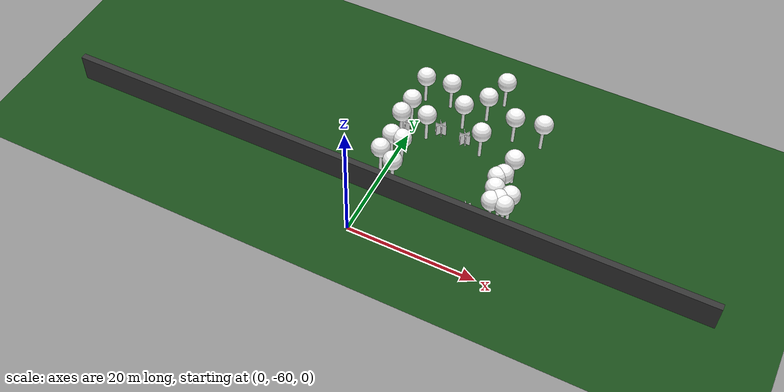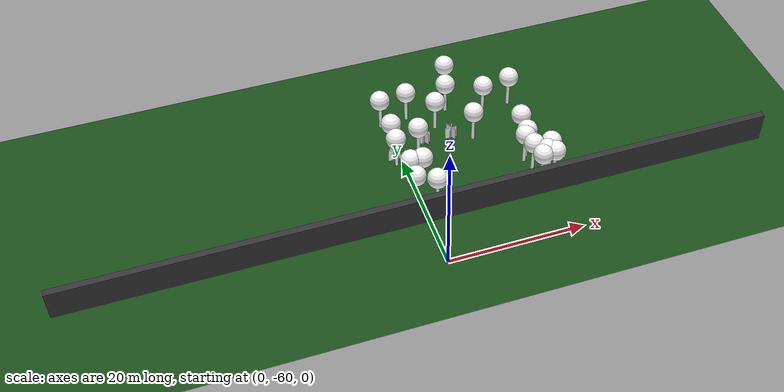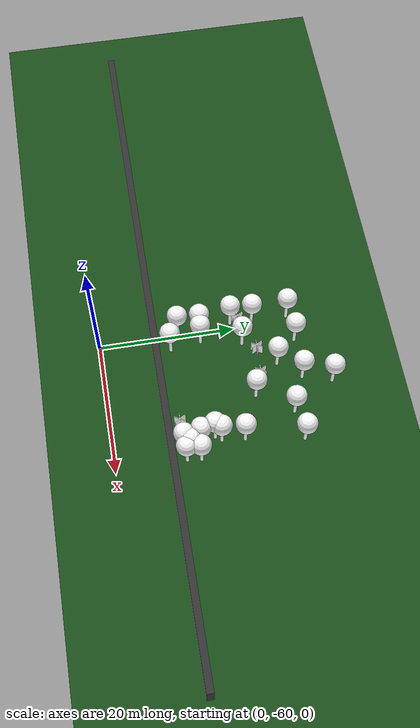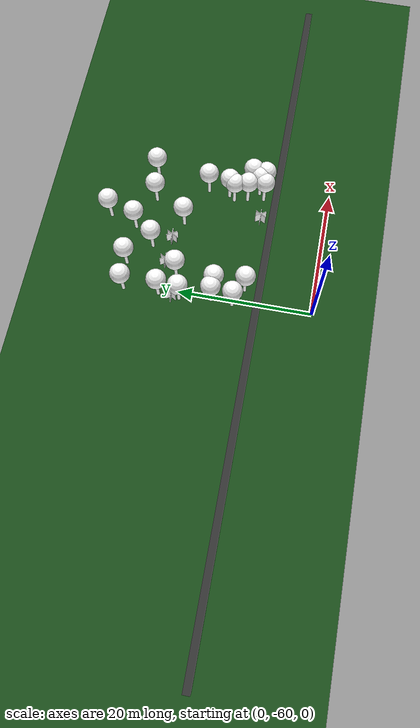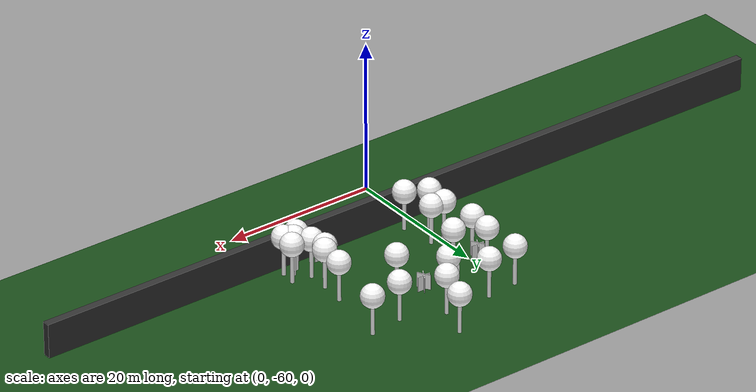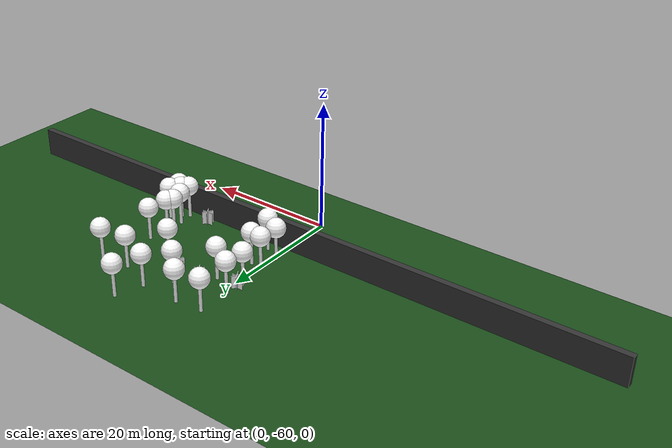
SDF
<sdf version="1.8">
 <world name="forest_world">
  <model name="fire_18">
   <pose>14.14 -50.05 1.00 0 0 0.00</pose>
   <static>true</static>
   <link name="fire_link">
    <visual name="fire_18_fire_main_0">
     <geometry><box><size>1.80 0.10 2.00</size></box></geometry>
     <material>
      <ambient>0.7 0.35 0.0 1</ambient>
      <diffuse>1 1 1 1</diffuse>
      <specular>0 0 0 1</specular>
      <emissive>0 0 0 1</emissive>
      <pbr>
       <metal><albedo_map>textures/fire.png</albedo_map><metalness>0.0</metalness><roughness>0.6</roughness></metal>
      </pbr>
     </material>
     <transparency>0.0</transparency>
     <cast_shadows>false</cast_shadows>
    </visual>
    <visual name="fire_18_fire_60_1">
     <pose>0.00 0.00 0.10 0 0 1.05</pose>
     <geometry><box><size>1.80 0.10 2.00</size></box></geometry>
     <material>
      <ambient>0.7 0.35 0.0 1</ambient>
      <diffuse>1 1 1 1</diffuse>
      <specular>0 0 0 1</specular>
      <emissive>0 0 0 1</emissive>
      <pbr>
       <metal><albedo_map>textures/fire.png</albedo_map><metalness>0.0</metalness><roughness>0.6</roughness></metal>
      </pbr>
     </material>
     <transparency>0.0</transparency>
     <cast_shadows>false</cast_shadows>
    </visual>
    <visual name="fire_18_fire_120_2">
     <pose>0.00 0.00 0.20 0 0 2.09</pose>
     <geometry><box><size>1.80 0.10 2.00</size></box></geometry>
     <material>
      <ambient>0.7 0.35 0.0 1</ambient>
      <diffuse>1 1 1 1</diffuse>
      <specular>0 0 0 1</specular>
      <emissive>0 0 0 1</emissive>
      <pbr>
       <metal><albedo_map>textures/fire.png</albedo_map><metalness>0.0</metalness><roughness>0.6</roughness></metal>
      </pbr>
     </material>
     <transparency>0.0</transparency>
     <cast_shadows>false</cast_shadows>
    </visual>
    <light type="point" name="fire_18_light_0">
     <pose>0.40 0.00 0.50 0 0 0</pose>
     <diffuse>1.0 0.7 0.3 1</diffuse>
     <specular>1.0 0.8 0.3 1</specular>
     <intensity>2</intensity>
     <attenuation>
      <range>2</range>
      <constant>0.1</constant>
      <linear>0.05</linear>
      <quadratic>0.02</quadratic>
     </attenuation>
     <cast_shadows>false</cast_shadows>
    </light>
    <light type="point" name="fire_18_light_1">
     <pose>-0.20 0.35 0.50 0 0 0</pose>
     <diffuse>1.0 0.7 0.3 1</diffuse>
     <specular>1.0 0.8 0.3 1</specular>
     <intensity>2</intensity>
     <attenuation>
      <range>2</range>
      <constant>0.1</constant>
      <linear>0.05</linear>
      <quadratic>0.02</quadratic>
     </attenuation>
     <cast_shadows>false</cast_shadows>
    </light>
    <light type="point" name="fire_18_light_2">
     <pose>-0.20 -0.35 0.50 0 0 0</pose>
     <diffuse>1.0 0.7 0.3 1</diffuse>
     <specular>1.0 0.8 0.3 1</specular>
     <intensity>2</intensity>
     <attenuation>
      <range>2</range>
      <constant>0.1</constant>
      <linear>0.05</linear>
      <quadratic>0.02</quadratic>
     </attenuation>
     <cast_shadows>false</cast_shadows>
    </light>
   </link>
   <plugin filename="libignition-gazebo-pose-publisher-system.so" name="ignition::gazebo::systems::PosePublisher">
    <frame_id>world</frame_id>
    <publish_link_pose>true</publish_link_pose>
    <use_pose_vector_msg>true</use_pose_vector_msg>
    <static_publisher>true</static_publisher>
    <static_update_frequency>1</static_update_frequency>
   </plugin>
  </model>
  <model name="fire_28">
   <pose>8.40 -37.43 1.00 0 0 0.00</pose>
   <static>true</static>
   <link name="fire_link">
    <visual name="fire_28_fire_main_0">
     <geometry><box><size>1.80 0.10 2.00</size></box></geometry>
     <material>
      <ambient>0.7 0.35 0.0 1</ambient>
      <diffuse>1 1 1 1</diffuse>
      <specular>0 0 0 1</specular>
      <emissive>0 0 0 1</emissive>
      <pbr>
       <metal><albedo_map>textures/fire.png</albedo_map><metalness>0.0</metalness><roughness>0.6</roughness></metal>
      </pbr>
     </material>
     <transparency>0.0</transparency>
     <cast_shadows>false</cast_shadows>
    </visual>
    <visual name="fire_28_fire_60_1">
     <pose>0.00 0.00 0.10 0 0 1.05</pose>
     <geometry><box><size>1.80 0.10 2.00</size></box></geometry>
     <material>
      <ambient>0.7 0.35 0.0 1</ambient>
      <diffuse>1 1 1 1</diffuse>
      <specular>0 0 0 1</specular>
      <emissive>0 0 0 1</emissive>
      <pbr>
       <metal><albedo_map>textures/fire.png</albedo_map><metalness>0.0</metalness><roughness>0.6</roughness></metal>
      </pbr>
     </material>
     <transparency>0.0</transparency>
     <cast_shadows>false</cast_shadows>
    </visual>
    <visual name="fire_28_fire_120_2">
     <pose>0.00 0.00 0.20 0 0 2.09</pose>
     <geometry><box><size>1.80 0.10 2.00</size></box></geometry>
     <material>
      <ambient>0.7 0.35 0.0 1</ambient>
      <diffuse>1 1 1 1</diffuse>
      <specular>0 0 0 1</specular>
      <emissive>0 0 0 1</emissive>
      <pbr>
       <metal><albedo_map>textures/fire.png</albedo_map><metalness>0.0</metalness><roughness>0.6</roughness></metal>
      </pbr>
     </material>
     <transparency>0.0</transparency>
     <cast_shadows>false</cast_shadows>
    </visual>
    <light type="point" name="fire_28_light_0">
     <pose>0.40 0.00 0.50 0 0 0</pose>
     <diffuse>1.0 0.7 0.3 1</diffuse>
     <specular>1.0 0.8 0.3 1</specular>
     <intensity>2</intensity>
     <attenuation>
      <range>2</range>
      <constant>0.1</constant>
      <linear>0.05</linear>
      <quadratic>0.02</quadratic>
     </attenuation>
     <cast_shadows>false</cast_shadows>
    </light>
    <light type="point" name="fire_28_light_1">
     <pose>-0.20 0.35 0.50 0 0 0</pose>
     <diffuse>1.0 0.7 0.3 1</diffuse>
     <specular>1.0 0.8 0.3 1</specular>
     <intensity>2</intensity>
     <attenuation>
      <range>2</range>
      <constant>0.1</constant>
      <linear>0.05</linear>
      <quadratic>0.02</quadratic>
     </attenuation>
     <cast_shadows>false</cast_shadows>
    </light>
    <light type="point" name="fire_28_light_2">
     <pose>-0.20 -0.35 0.50 0 0 0</pose>
     <diffuse>1.0 0.7 0.3 1</diffuse>
     <specular>1.0 0.8 0.3 1</specular>
     <intensity>2</intensity>
     <attenuation>
      <range>2</range>
      <constant>0.1</constant>
      <linear>0.05</linear>
      <quadratic>0.02</quadratic>
     </attenuation>
     <cast_shadows>false</cast_shadows>
    </light>
   </link>
   <plugin filename="libignition-gazebo-pose-publisher-system.so" name="ignition::gazebo::systems::PosePublisher">
    <frame_id>world</frame_id>
    <publish_link_pose>true</publish_link_pose>
    <use_pose_vector_msg>true</use_pose_vector_msg>
    <static_publisher>true</static_publisher>
    <static_update_frequency>1</static_update_frequency>
   </plugin>
  </model>
  <model name="fire_30">
   <pose>4.30 -37.25 1.00 0 0 0.00</pose>
   <static>true</static>
   <link name="fire_link">
    <visual name="fire_30_fire_main_0">
     <geometry><box><size>1.80 0.10 2.00</size></box></geometry>
     <material>
      <ambient>0.7 0.35 0.0 1</ambient>
      <diffuse>1 1 1 1</diffuse>
      <specular>0 0 0 1</specular>
      <emissive>0 0 0 1</emissive>
      <pbr>
       <metal><albedo_map>textures/fire.png</albedo_map><metalness>0.0</metalness><roughness>0.6</roughness></metal>
      </pbr>
     </material>
     <transparency>0.0</transparency>
     <cast_shadows>false</cast_shadows>
    </visual>
    <visual name="fire_30_fire_60_1">
     <pose>0.00 0.00 0.10 0 0 1.05</pose>
     <geometry><box><size>1.80 0.10 2.00</size></box></geometry>
     <material>
      <ambient>0.7 0.35 0.0 1</ambient>
      <diffuse>1 1 1 1</diffuse>
      <specular>0 0 0 1</specular>
      <emissive>0 0 0 1</emissive>
      <pbr>
       <metal><albedo_map>textures/fire.png</albedo_map><metalness>0.0</metalness><roughness>0.6</roughness></metal>
      </pbr>
     </material>
     <transparency>0.0</transparency>
     <cast_shadows>false</cast_shadows>
    </visual>
    <visual name="fire_30_fire_120_2">
     <pose>0.00 0.00 0.20 0 0 2.09</pose>
     <geometry><box><size>1.80 0.10 2.00</size></box></geometry>
     <material>
      <ambient>0.7 0.35 0.0 1</ambient>
      <diffuse>1 1 1 1</diffuse>
      <specular>0 0 0 1</specular>
      <emissive>0 0 0 1</emissive>
      <pbr>
       <metal><albedo_map>textures/fire.png</albedo_map><metalness>0.0</metalness><roughness>0.6</roughness></metal>
      </pbr>
     </material>
     <transparency>0.0</transparency>
     <cast_shadows>false</cast_shadows>
    </visual>
    <light type="point" name="fire_30_light_0">
     <pose>0.40 0.00 0.50 0 0 0</pose>
     <diffuse>1.0 0.7 0.3 1</diffuse>
     <specular>1.0 0.8 0.3 1</specular>
     <intensity>2</intensity>
     <attenuation>
      <range>2</range>
      <constant>0.1</constant>
      <linear>0.05</linear>
      <quadratic>0.02</quadratic>
     </attenuation>
     <cast_shadows>false</cast_shadows>
    </light>
    <light type="point" name="fire_30_light_1">
     <pose>-0.20 0.35 0.50 0 0 0</pose>
     <diffuse>1.0 0.7 0.3 1</diffuse>
     <specular>1.0 0.8 0.3 1</specular>
     <intensity>2</intensity>
     <attenuation>
      <range>2</range>
      <constant>0.1</constant>
      <linear>0.05</linear>
      <quadratic>0.02</quadratic>
     </attenuation>
     <cast_shadows>false</cast_shadows>
    </light>
    <light type="point" name="fire_30_light_2">
     <pose>-0.20 -0.35 0.50 0 0 0</pose>
     <diffuse>1.0 0.7 0.3 1</diffuse>
     <specular>1.0 0.8 0.3 1</specular>
     <intensity>2</intensity>
     <attenuation>
      <range>2</range>
      <constant>0.1</constant>
      <linear>0.05</linear>
      <quadratic>0.02</quadratic>
     </attenuation>
     <cast_shadows>false</cast_shadows>
    </light>
   </link>
   <plugin filename="libignition-gazebo-pose-publisher-system.so" name="ignition::gazebo::systems::PosePublisher">
    <frame_id>world</frame_id>
    <publish_link_pose>true</publish_link_pose>
    <use_pose_vector_msg>true</use_pose_vector_msg>
    <static_publisher>true</static_publisher>
    <static_update_frequency>1</static_update_frequency>
   </plugin>
  </model>
  <model name="fire_39">
   <pose>-0.97 -39.21 1.00 0 0 0.00</pose>
   <static>true</static>
   <link name="fire_link">
    <visual name="fire_39_fire_main_0">
     <geometry><box><size>1.80 0.10 2.00</size></box></geometry>
     <material>
      <ambient>0.7 0.35 0.0 1</ambient>
      <diffuse>1 1 1 1</diffuse>
      <specular>0 0 0 1</specular>
      <emissive>0 0 0 1</emissive>
      <pbr>
       <metal><albedo_map>textures/fire.png</albedo_map><metalness>0.0</metalness><roughness>0.6</roughness></metal>
      </pbr>
     </material>
     <transparency>0.0</transparency>
     <cast_shadows>false</cast_shadows>
    </visual>
    <visual name="fire_39_fire_60_1">
     <pose>0.00 0.00 0.10 0 0 1.05</pose>
     <geometry><box><size>1.80 0.10 2.00</size></box></geometry>
     <material>
      <ambient>0.7 0.35 0.0 1</ambient>
      <diffuse>1 1 1 1</diffuse>
      <specular>0 0 0 1</specular>
      <emissive>0 0 0 1</emissive>
      <pbr>
       <metal><albedo_map>textures/fire.png</albedo_map><metalness>0.0</metalness><roughness>0.6</roughness></metal>
      </pbr>
     </material>
     <transparency>0.0</transparency>
     <cast_shadows>false</cast_shadows>
    </visual>
    <visual name="fire_39_fire_120_2">
     <pose>0.00 0.00 0.20 0 0 2.09</pose>
     <geometry><box><size>1.80 0.10 2.00</size></box></geometry>
     <material>
      <ambient>0.7 0.35 0.0 1</ambient>
      <diffuse>1 1 1 1</diffuse>
      <specular>0 0 0 1</specular>
      <emissive>0 0 0 1</emissive>
      <pbr>
       <metal><albedo_map>textures/fire.png</albedo_map><metalness>0.0</metalness><roughness>0.6</roughness></metal>
      </pbr>
     </material>
     <transparency>0.0</transparency>
     <cast_shadows>false</cast_shadows>
    </visual>
    <light type="point" name="fire_39_light_0">
     <pose>0.40 0.00 0.50 0 0 0</pose>
     <diffuse>1.0 0.7 0.3 1</diffuse>
     <specular>1.0 0.8 0.3 1</specular>
     <intensity>2</intensity>
     <attenuation>
      <range>2</range>
      <constant>0.1</constant>
      <linear>0.05</linear>
      <quadratic>0.02</quadratic>
     </attenuation>
     <cast_shadows>false</cast_shadows>
    </light>
    <light type="point" name="fire_39_light_1">
     <pose>-0.20 0.35 0.50 0 0 0</pose>
     <diffuse>1.0 0.7 0.3 1</diffuse>
     <specular>1.0 0.8 0.3 1</specular>
     <intensity>2</intensity>
     <attenuation>
      <range>2</range>
      <constant>0.1</constant>
      <linear>0.05</linear>
      <quadratic>0.02</quadratic>
     </attenuation>
     <cast_shadows>false</cast_shadows>
    </light>
    <light type="point" name="fire_39_light_2">
     <pose>-0.20 -0.35 0.50 0 0 0</pose>
     <diffuse>1.0 0.7 0.3 1</diffuse>
     <specular>1.0 0.8 0.3 1</specular>
     <intensity>2</intensity>
     <attenuation>
      <range>2</range>
      <constant>0.1</constant>
      <linear>0.05</linear>
      <quadratic>0.02</quadratic>
     </attenuation>
     <cast_shadows>false</cast_shadows>
    </light>
   </link>
   <plugin filename="libignition-gazebo-pose-publisher-system.so" name="ignition::gazebo::systems::PosePublisher">
    <frame_id>world</frame_id>
    <publish_link_pose>true</publish_link_pose>
    <use_pose_vector_msg>true</use_pose_vector_msg>
    <static_publisher>true</static_publisher>
    <static_update_frequency>1</static_update_frequency>
   </plugin>
  </model>
  <model name="tree_simple484">
   <static>1</static>
   <link name="link">
    <pose>0 0 0.1 0 -0 0</pose>
    <collision name="collision_trunk">
     <pose>0 0 2 0 -0 0</pose>
     <geometry><cylinder><radius>0.25</radius><length>4</length></cylinder></geometry>
    </collision>
    <collision name="collision_treetop">
     <pose>0 0 5.2 0 -0 0</pose>
     <geometry><sphere><radius>1.5</radius></sphere></geometry>
    </collision>
    <visual name="trunk">
     <pose>0 0 2 0 -0 0</pose>
     <geometry><cylinder><radius>0.25</radius><length>4</length></cylinder></geometry>
     <material>
      <ambient>0.5 0.5 0.5 1</ambient>
      <diffuse>1.0 1.0 1.0 1</diffuse>
      <specular>0.0 0.0 0.0 1</specular>
      <pbr>
       <metal>
        <albedo_map>../worlds/textures/tree_simple_trunk.jpg</albedo_map>
        <metalness>0.0</metalness>
        <roughness>0.8</roughness>
       </metal>
      </pbr>
     </material>
    </visual>
    <visual name="treetop">
     <pose>0 0 5.2 0 -0 0</pose>
     <geometry><sphere><radius>1.5</radius></sphere></geometry>
     <material>
      <ambient>0.5 0.5 0.5 1</ambient>
      <diffuse>1.0 1.0 1.0 1</diffuse>
      <specular>0.0 0.0 0.0 1</specular>
      <pbr>
       <metal>
        <albedo_map>../worlds/textures/tree_simple_treetop.jpg</albedo_map>
        <metalness>0.0</metalness>
        <roughness>0.9</roughness>
       </metal>
      </pbr>
     </material>
    </visual>
   </link>
   <pose>19.8605088225 -47.9062304077 0 0 -0 0</pose>
  </model>
  <model name="tree_simple464">
   <static>1</static>
   <link name="link">
    <pose>0 0 0.1 0 -0 0</pose>
    <collision name="collision_trunk">
     <pose>0 0 2 0 -0 0</pose>
     <geometry><cylinder><radius>0.25</radius><length>4</length></cylinder></geometry>
    </collision>
    <collision name="collision_treetop">
     <pose>0 0 5.2 0 -0 0</pose>
     <geometry><sphere><radius>1.5</radius></sphere></geometry>
    </collision>
    <visual name="trunk">
     <pose>0 0 2 0 -0 0</pose>
     <geometry><cylinder><radius>0.25</radius><length>4</length></cylinder></geometry>
     <material>
      <ambient>0.5 0.5 0.5 1</ambient>
      <diffuse>1.0 1.0 1.0 1</diffuse>
      <specular>0.0 0.0 0.0 1</specular>
      <pbr>
       <metal>
        <albedo_map>../worlds/textures/tree_simple_trunk.jpg</albedo_map>
        <metalness>0.0</metalness>
        <roughness>0.8</roughness>
       </metal>
      </pbr>
     </material>
    </visual>
    <visual name="treetop">
     <pose>0 0 5.2 0 -0 0</pose>
     <geometry><sphere><radius>1.5</radius></sphere></geometry>
     <material>
      <ambient>0.5 0.5 0.5 1</ambient>
      <diffuse>1.0 1.0 1.0 1</diffuse>
      <specular>0.0 0.0 0.0 1</specular>
      <pbr>
       <metal>
        <albedo_map>../worlds/textures/tree_simple_treetop.jpg</albedo_map>
        <metalness>0.0</metalness>
        <roughness>0.9</roughness>
       </metal>
      </pbr>
     </material>
    </visual>
   </link>
   <pose>18.697132214 -49.1923863075 0 0 -0 0</pose>
  </model>
  <model name="tree_simple458">
   <static>1</static>
   <link name="link">
    <pose>0 0 0.1 0 -0 0</pose>
    <collision name="collision_trunk">
     <pose>0 0 2 0 -0 0</pose>
     <geometry><cylinder><radius>0.25</radius><length>4</length></cylinder></geometry>
    </collision>
    <collision name="collision_treetop">
     <pose>0 0 5.2 0 -0 0</pose>
     <geometry><sphere><radius>1.5</radius></sphere></geometry>
    </collision>
    <visual name="trunk">
     <pose>0 0 2 0 -0 0</pose>
     <geometry><cylinder><radius>0.25</radius><length>4</length></cylinder></geometry>
     <material>
      <ambient>0.5 0.5 0.5 1</ambient>
      <diffuse>1.0 1.0 1.0 1</diffuse>
      <specular>0.0 0.0 0.0 1</specular>
      <pbr>
       <metal>
        <albedo_map>../worlds/textures/tree_simple_trunk.jpg</albedo_map>
        <metalness>0.0</metalness>
        <roughness>0.8</roughness>
       </metal>
      </pbr>
     </material>
    </visual>
    <visual name="treetop">
     <pose>0 0 5.2 0 -0 0</pose>
     <geometry><sphere><radius>1.5</radius></sphere></geometry>
     <material>
      <ambient>0.5 0.5 0.5 1</ambient>
      <diffuse>1.0 1.0 1.0 1</diffuse>
      <specular>0.0 0.0 0.0 1</specular>
      <pbr>
       <metal>
        <albedo_map>../worlds/textures/tree_simple_treetop.jpg</albedo_map>
        <metalness>0.0</metalness>
        <roughness>0.9</roughness>
       </metal>
      </pbr>
     </material>
    </visual>
   </link>
   <pose>2.06613671761 -49.6676263837 0 0 -0 0</pose>
  </model>
  <model name="tree_simple430">
   <static>1</static>
   <link name="link">
    <pose>0 0 0.1 0 -0 0</pose>
    <collision name="collision_trunk">
     <pose>0 0 2 0 -0 0</pose>
     <geometry><cylinder><radius>0.25</radius><length>4</length></cylinder></geometry>
    </collision>
    <collision name="collision_treetop">
     <pose>0 0 5.2 0 -0 0</pose>
     <geometry><sphere><radius>1.5</radius></sphere></geometry>
    </collision>
    <visual name="trunk">
     <pose>0 0 2 0 -0 0</pose>
     <geometry><cylinder><radius>0.25</radius><length>4</length></cylinder></geometry>
     <material>
      <ambient>0.5 0.5 0.5 1</ambient>
      <diffuse>1.0 1.0 1.0 1</diffuse>
      <specular>0.0 0.0 0.0 1</specular>
      <pbr>
       <metal>
        <albedo_map>../worlds/textures/tree_simple_trunk.jpg</albedo_map>
        <metalness>0.0</metalness>
        <roughness>0.8</roughness>
       </metal>
      </pbr>
     </material>
    </visual>
    <visual name="treetop">
     <pose>0 0 5.2 0 -0 0</pose>
     <geometry><sphere><radius>1.5</radius></sphere></geometry>
     <material>
      <ambient>0.5 0.5 0.5 1</ambient>
      <diffuse>1.0 1.0 1.0 1</diffuse>
      <specular>0.0 0.0 0.0 1</specular>
      <pbr>
       <metal>
        <albedo_map>../worlds/textures/tree_simple_treetop.jpg</albedo_map>
        <metalness>0.0</metalness>
        <roughness>0.9</roughness>
       </metal>
      </pbr>
     </material>
    </visual>
   </link>
   <pose>19.6675265043 -49.8829362896 0 0 -0 0</pose>
  </model>
  <model name="tree_simple427">
   <static>1</static>
   <link name="link">
    <pose>0 0 0.1 0 -0 0</pose>
    <collision name="collision_trunk">
     <pose>0 0 2 0 -0 0</pose>
     <geometry><cylinder><radius>0.25</radius><length>4</length></cylinder></geometry>
    </collision>
    <collision name="collision_treetop">
     <pose>0 0 5.2 0 -0 0</pose>
     <geometry><sphere><radius>1.5</radius></sphere></geometry>
    </collision>
    <visual name="trunk">
     <pose>0 0 2 0 -0 0</pose>
     <geometry><cylinder><radius>0.25</radius><length>4</length></cylinder></geometry>
     <material>
      <ambient>0.5 0.5 0.5 1</ambient>
      <diffuse>1.0 1.0 1.0 1</diffuse>
      <specular>0.0 0.0 0.0 1</specular>
      <pbr>
       <metal>
        <albedo_map>../worlds/textures/tree_simple_trunk.jpg</albedo_map>
        <metalness>0.0</metalness>
        <roughness>0.8</roughness>
       </metal>
      </pbr>
     </material>
    </visual>
    <visual name="treetop">
     <pose>0 0 5.2 0 -0 0</pose>
     <geometry><sphere><radius>1.5</radius></sphere></geometry>
     <material>
      <ambient>0.5 0.5 0.5 1</ambient>
      <diffuse>1.0 1.0 1.0 1</diffuse>
      <specular>0.0 0.0 0.0 1</specular>
      <pbr>
       <metal>
        <albedo_map>../worlds/textures/tree_simple_treetop.jpg</albedo_map>
        <metalness>0.0</metalness>
        <roughness>0.9</roughness>
       </metal>
      </pbr>
     </material>
    </visual>
   </link>
   <pose>17.8220319496 -41.3749782968 0 0 -0 0</pose>
  </model>
  <model name="tree_simple377">
   <static>1</static>
   <link name="link">
    <pose>0 0 0.1 0 -0 0</pose>
    <collision name="collision_trunk">
     <pose>0 0 2 0 -0 0</pose>
     <geometry><cylinder><radius>0.25</radius><length>4</length></cylinder></geometry>
    </collision>
    <collision name="collision_treetop">
     <pose>0 0 5.2 0 -0 0</pose>
     <geometry><sphere><radius>1.5</radius></sphere></geometry>
    </collision>
    <visual name="trunk">
     <pose>0 0 2 0 -0 0</pose>
     <geometry><cylinder><radius>0.25</radius><length>4</length></cylinder></geometry>
     <material>
      <ambient>0.5 0.5 0.5 1</ambient>
      <diffuse>1.0 1.0 1.0 1</diffuse>
      <specular>0.0 0.0 0.0 1</specular>
      <pbr>
       <metal>
        <albedo_map>../worlds/textures/tree_simple_trunk.jpg</albedo_map>
        <metalness>0.0</metalness>
        <roughness>0.8</roughness>
       </metal>
      </pbr>
     </material>
    </visual>
    <visual name="treetop">
     <pose>0 0 5.2 0 -0 0</pose>
     <geometry><sphere><radius>1.5</radius></sphere></geometry>
     <material>
      <ambient>0.5 0.5 0.5 1</ambient>
      <diffuse>1.0 1.0 1.0 1</diffuse>
      <specular>0.0 0.0 0.0 1</specular>
      <pbr>
       <metal>
        <albedo_map>../worlds/textures/tree_simple_treetop.jpg</albedo_map>
        <metalness>0.0</metalness>
        <roughness>0.9</roughness>
       </metal>
      </pbr>
     </material>
    </visual>
   </link>
   <pose>10.8205708978 -27.3699142702 0 0 -0 0</pose>
  </model>
  <model name="tree_simple344">
   <static>1</static>
   <link name="link">
    <pose>0 0 0.1 0 -0 0</pose>
    <collision name="collision_trunk">
     <pose>0 0 2 0 -0 0</pose>
     <geometry><cylinder><radius>0.25</radius><length>4</length></cylinder></geometry>
    </collision>
    <collision name="collision_treetop">
     <pose>0 0 5.2 0 -0 0</pose>
     <geometry><sphere><radius>1.5</radius></sphere></geometry>
    </collision>
    <visual name="trunk">
     <pose>0 0 2 0 -0 0</pose>
     <geometry><cylinder><radius>0.25</radius><length>4</length></cylinder></geometry>
     <material>
      <ambient>0.5 0.5 0.5 1</ambient>
      <diffuse>1.0 1.0 1.0 1</diffuse>
      <specular>0.0 0.0 0.0 1</specular>
      <pbr>
       <metal>
        <albedo_map>../worlds/textures/tree_simple_trunk.jpg</albedo_map>
        <metalness>0.0</metalness>
        <roughness>0.8</roughness>
       </metal>
      </pbr>
     </material>
    </visual>
    <visual name="treetop">
     <pose>0 0 5.2 0 -0 0</pose>
     <geometry><sphere><radius>1.5</radius></sphere></geometry>
     <material>
      <ambient>0.5 0.5 0.5 1</ambient>
      <diffuse>1.0 1.0 1.0 1</diffuse>
      <specular>0.0 0.0 0.0 1</specular>
      <pbr>
       <metal>
        <albedo_map>../worlds/textures/tree_simple_treetop.jpg</albedo_map>
        <metalness>0.0</metalness>
        <roughness>0.9</roughness>
       </metal>
      </pbr>
     </material>
    </visual>
   </link>
   <pose>-1.01406181855 -40.356708741 0 0 -0 0</pose>
  </model>
  <model name="tree_simple285">
   <static>1</static>
   <link name="link">
    <pose>0 0 0.1 0 -0 0</pose>
    <collision name="collision_trunk">
     <pose>0 0 2 0 -0 0</pose>
     <geometry><cylinder><radius>0.25</radius><length>4</length></cylinder></geometry>
    </collision>
    <collision name="collision_treetop">
     <pose>0 0 5.2 0 -0 0</pose>
     <geometry><sphere><radius>1.5</radius></sphere></geometry>
    </collision>
    <visual name="trunk">
     <pose>0 0 2 0 -0 0</pose>
     <geometry><cylinder><radius>0.25</radius><length>4</length></cylinder></geometry>
     <material>
      <ambient>0.5 0.5 0.5 1</ambient>
      <diffuse>1.0 1.0 1.0 1</diffuse>
      <specular>0.0 0.0 0.0 1</specular>
      <pbr>
       <metal>
        <albedo_map>../worlds/textures/tree_simple_trunk.jpg</albedo_map>
        <metalness>0.0</metalness>
        <roughness>0.8</roughness>
       </metal>
      </pbr>
     </material>
    </visual>
    <visual name="treetop">
     <pose>0 0 5.2 0 -0 0</pose>
     <geometry><sphere><radius>1.5</radius></sphere></geometry>
     <material>
      <ambient>0.5 0.5 0.5 1</ambient>
      <diffuse>1.0 1.0 1.0 1</diffuse>
      <specular>0.0 0.0 0.0 1</specular>
      <pbr>
       <metal>
        <albedo_map>../worlds/textures/tree_simple_treetop.jpg</albedo_map>
        <metalness>0.0</metalness>
        <roughness>0.9</roughness>
       </metal>
      </pbr>
     </material>
    </visual>
   </link>
   <pose>-0.758587547347 -37.1758267931 0 0 -0 0</pose>
  </model>
  <model name="tree_simple281">
   <static>1</static>
   <link name="link">
    <pose>0 0 0.1 0 -0 0</pose>
    <collision name="collision_trunk">
     <pose>0 0 2 0 -0 0</pose>
     <geometry><cylinder><radius>0.25</radius><length>4</length></cylinder></geometry>
    </collision>
    <collision name="collision_treetop">
     <pose>0 0 5.2 0 -0 0</pose>
     <geometry><sphere><radius>1.5</radius></sphere></geometry>
    </collision>
    <visual name="trunk">
     <pose>0 0 2 0 -0 0</pose>
     <geometry><cylinder><radius>0.25</radius><length>4</length></cylinder></geometry>
     <material>
      <ambient>0.5 0.5 0.5 1</ambient>
      <diffuse>1.0 1.0 1.0 1</diffuse>
      <specular>0.0 0.0 0.0 1</specular>
      <pbr>
       <metal>
        <albedo_map>../worlds/textures/tree_simple_trunk.jpg</albedo_map>
        <metalness>0.0</metalness>
        <roughness>0.8</roughness>
       </metal>
      </pbr>
     </material>
    </visual>
    <visual name="treetop">
     <pose>0 0 5.2 0 -0 0</pose>
     <geometry><sphere><radius>1.5</radius></sphere></geometry>
     <material>
      <ambient>0.5 0.5 0.5 1</ambient>
      <diffuse>1.0 1.0 1.0 1</diffuse>
      <specular>0.0 0.0 0.0 1</specular>
      <pbr>
       <metal>
        <albedo_map>../worlds/textures/tree_simple_treetop.jpg</albedo_map>
        <metalness>0.0</metalness>
        <roughness>0.9</roughness>
       </metal>
      </pbr>
     </material>
    </visual>
   </link>
   <pose>17.7631793605 -49.9798329039 0 0 -0 0</pose>
  </model>
  <model name="tree_simple249">
   <static>1</static>
   <link name="link">
    <pose>0 0 0.1 0 -0 0</pose>
    <collision name="collision_trunk">
     <pose>0 0 2 0 -0 0</pose>
     <geometry><cylinder><radius>0.25</radius><length>4</length></cylinder></geometry>
    </collision>
    <collision name="collision_treetop">
     <pose>0 0 5.2 0 -0 0</pose>
     <geometry><sphere><radius>1.5</radius></sphere></geometry>
    </collision>
    <visual name="trunk">
     <pose>0 0 2 0 -0 0</pose>
     <geometry><cylinder><radius>0.25</radius><length>4</length></cylinder></geometry>
     <material>
      <ambient>0.5 0.5 0.5 1</ambient>
      <diffuse>1.0 1.0 1.0 1</diffuse>
      <specular>0.0 0.0 0.0 1</specular>
      <pbr>
       <metal>
        <albedo_map>../worlds/textures/tree_simple_trunk.jpg</albedo_map>
        <metalness>0.0</metalness>
        <roughness>0.8</roughness>
       </metal>
      </pbr>
     </material>
    </visual>
    <visual name="treetop">
     <pose>0 0 5.2 0 -0 0</pose>
     <geometry><sphere><radius>1.5</radius></sphere></geometry>
     <material>
      <ambient>0.5 0.5 0.5 1</ambient>
      <diffuse>1.0 1.0 1.0 1</diffuse>
      <specular>0.0 0.0 0.0 1</specular>
      <pbr>
       <metal>
        <albedo_map>../worlds/textures/tree_simple_treetop.jpg</albedo_map>
        <metalness>0.0</metalness>
        <roughness>0.9</roughness>
       </metal>
      </pbr>
     </material>
    </visual>
   </link>
   <pose>9.52111231685 -31.538100668 0 0 -0 0</pose>
  </model>
  <model name="tree_simple223">
   <static>1</static>
   <link name="link">
    <pose>0 0 0.1 0 -0 0</pose>
    <collision name="collision_trunk">
     <pose>0 0 2 0 -0 0</pose>
     <geometry><cylinder><radius>0.25</radius><length>4</length></cylinder></geometry>
    </collision>
    <collision name="collision_treetop">
     <pose>0 0 5.2 0 -0 0</pose>
     <geometry><sphere><radius>1.5</radius></sphere></geometry>
    </collision>
    <visual name="trunk">
     <pose>0 0 2 0 -0 0</pose>
     <geometry><cylinder><radius>0.25</radius><length>4</length></cylinder></geometry>
     <material>
      <ambient>0.5 0.5 0.5 1</ambient>
      <diffuse>1.0 1.0 1.0 1</diffuse>
      <specular>0.0 0.0 0.0 1</specular>
      <pbr>
       <metal>
        <albedo_map>../worlds/textures/tree_simple_trunk.jpg</albedo_map>
        <metalness>0.0</metalness>
        <roughness>0.8</roughness>
       </metal>
      </pbr>
     </material>
    </visual>
    <visual name="treetop">
     <pose>0 0 5.2 0 -0 0</pose>
     <geometry><sphere><radius>1.5</radius></sphere></geometry>
     <material>
      <ambient>0.5 0.5 0.5 1</ambient>
      <diffuse>1.0 1.0 1.0 1</diffuse>
      <specular>0.0 0.0 0.0 1</specular>
      <pbr>
       <metal>
        <albedo_map>../worlds/textures/tree_simple_treetop.jpg</albedo_map>
        <metalness>0.0</metalness>
        <roughness>0.9</roughness>
       </metal>
      </pbr>
     </material>
    </visual>
   </link>
   <pose>-0.831429515675 -31.9083877979 0 0 -0 0</pose>
  </model>
  <model name="tree_simple215">
   <static>1</static>
   <link name="link">
    <pose>0 0 0.1 0 -0 0</pose>
    <collision name="collision_trunk">
     <pose>0 0 2 0 -0 0</pose>
     <geometry><cylinder><radius>0.25</radius><length>4</length></cylinder></geometry>
    </collision>
    <collision name="collision_treetop">
     <pose>0 0 5.2 0 -0 0</pose>
     <geometry><sphere><radius>1.5</radius></sphere></geometry>
    </collision>
    <visual name="trunk">
     <pose>0 0 2 0 -0 0</pose>
     <geometry><cylinder><radius>0.25</radius><length>4</length></cylinder></geometry>
     <material>
      <ambient>0.5 0.5 0.5 1</ambient>
      <diffuse>1.0 1.0 1.0 1</diffuse>
      <specular>0.0 0.0 0.0 1</specular>
      <pbr>
       <metal>
        <albedo_map>../worlds/textures/tree_simple_trunk.jpg</albedo_map>
        <metalness>0.0</metalness>
        <roughness>0.8</roughness>
       </metal>
      </pbr>
     </material>
    </visual>
    <visual name="treetop">
     <pose>0 0 5.2 0 -0 0</pose>
     <geometry><sphere><radius>1.5</radius></sphere></geometry>
     <material>
      <ambient>0.5 0.5 0.5 1</ambient>
      <diffuse>1.0 1.0 1.0 1</diffuse>
      <specular>0.0 0.0 0.0 1</specular>
      <pbr>
       <metal>
        <albedo_map>../worlds/textures/tree_simple_treetop.jpg</albedo_map>
        <metalness>0.0</metalness>
        <roughness>0.9</roughness>
       </metal>
      </pbr>
     </material>
    </visual>
   </link>
   <pose>6.8108440726 -34.7298391892 0 0 -0 0</pose>
  </model>
  <model name="tree_simple167">
   <static>1</static>
   <link name="link">
    <pose>0 0 0.1 0 -0 0</pose>
    <collision name="collision_trunk">
     <pose>0 0 2 0 -0 0</pose>
     <geometry><cylinder><radius>0.25</radius><length>4</length></cylinder></geometry>
    </collision>
    <collision name="collision_treetop">
     <pose>0 0 5.2 0 -0 0</pose>
     <geometry><sphere><radius>1.5</radius></sphere></geometry>
    </collision>
    <visual name="trunk">
     <pose>0 0 2 0 -0 0</pose>
     <geometry><cylinder><radius>0.25</radius><length>4</length></cylinder></geometry>
     <material>
      <ambient>0.5 0.5 0.5 1</ambient>
      <diffuse>1.0 1.0 1.0 1</diffuse>
      <specular>0.0 0.0 0.0 1</specular>
      <pbr>
       <metal>
        <albedo_map>../worlds/textures/tree_simple_trunk.jpg</albedo_map>
        <metalness>0.0</metalness>
        <roughness>0.8</roughness>
       </metal>
      </pbr>
     </material>
    </visual>
    <visual name="treetop">
     <pose>0 0 5.2 0 -0 0</pose>
     <geometry><sphere><radius>1.5</radius></sphere></geometry>
     <material>
      <ambient>0.5 0.5 0.5 1</ambient>
      <diffuse>1.0 1.0 1.0 1</diffuse>
      <specular>0.0 0.0 0.0 1</specular>
      <pbr>
       <metal>
        <albedo_map>../worlds/textures/tree_simple_treetop.jpg</albedo_map>
        <metalness>0.0</metalness>
        <roughness>0.9</roughness>
       </metal>
      </pbr>
     </material>
    </visual>
   </link>
   <pose>14.7724548693 -33.6841584831 0 0 -0 0</pose>
  </model>
  <model name="tree_simple142">
   <static>1</static>
   <link name="link">
    <pose>0 0 0.1 0 -0 0</pose>
    <collision name="collision_trunk">
     <pose>0 0 2 0 -0 0</pose>
     <geometry><cylinder><radius>0.25</radius><length>4</length></cylinder></geometry>
    </collision>
    <collision name="collision_treetop">
     <pose>0 0 5.2 0 -0 0</pose>
     <geometry><sphere><radius>1.5</radius></sphere></geometry>
    </collision>
    <visual name="trunk">
     <pose>0 0 2 0 -0 0</pose>
     <geometry><cylinder><radius>0.25</radius><length>4</length></cylinder></geometry>
     <material>
      <ambient>0.5 0.5 0.5 1</ambient>
      <diffuse>1.0 1.0 1.0 1</diffuse>
      <specular>0.0 0.0 0.0 1</specular>
      <pbr>
       <metal>
        <albedo_map>../worlds/textures/tree_simple_trunk.jpg</albedo_map>
        <metalness>0.0</metalness>
        <roughness>0.8</roughness>
       </metal>
      </pbr>
     </material>
    </visual>
    <visual name="treetop">
     <pose>0 0 5.2 0 -0 0</pose>
     <geometry><sphere><radius>1.5</radius></sphere></geometry>
     <material>
      <ambient>0.5 0.5 0.5 1</ambient>
      <diffuse>1.0 1.0 1.0 1</diffuse>
      <specular>0.0 0.0 0.0 1</specular>
      <pbr>
       <metal>
        <albedo_map>../worlds/textures/tree_simple_treetop.jpg</albedo_map>
        <metalness>0.0</metalness>
        <roughness>0.9</roughness>
       </metal>
      </pbr>
     </material>
    </visual>
   </link>
   <pose>2.70227648478 -39.1925835725 0 0 -0 0</pose>
  </model>
  <model name="tree_simple139">
   <static>1</static>
   <link name="link">
    <pose>0 0 0.1 0 -0 0</pose>
    <collision name="collision_trunk">
     <pose>0 0 2 0 -0 0</pose>
     <geometry><cylinder><radius>0.25</radius><length>4</length></cylinder></geometry>
    </collision>
    <collision name="collision_treetop">
     <pose>0 0 5.2 0 -0 0</pose>
     <geometry><sphere><radius>1.5</radius></sphere></geometry>
    </collision>
    <visual name="trunk">
     <pose>0 0 2 0 -0 0</pose>
     <geometry><cylinder><radius>0.25</radius><length>4</length></cylinder></geometry>
     <material>
      <ambient>0.5 0.5 0.5 1</ambient>
      <diffuse>1.0 1.0 1.0 1</diffuse>
      <specular>0.0 0.0 0.0 1</specular>
      <pbr>
       <metal>
        <albedo_map>../worlds/textures/tree_simple_trunk.jpg</albedo_map>
        <metalness>0.0</metalness>
        <roughness>0.8</roughness>
       </metal>
      </pbr>
     </material>
    </visual>
    <visual name="treetop">
     <pose>0 0 5.2 0 -0 0</pose>
     <geometry><sphere><radius>1.5</radius></sphere></geometry>
     <material>
      <ambient>0.5 0.5 0.5 1</ambient>
      <diffuse>1.0 1.0 1.0 1</diffuse>
      <specular>0.0 0.0 0.0 1</specular>
      <pbr>
       <metal>
        <albedo_map>../worlds/textures/tree_simple_treetop.jpg</albedo_map>
        <metalness>0.0</metalness>
        <roughness>0.9</roughness>
       </metal>
      </pbr>
     </material>
    </visual>
   </link>
   <pose>16.853661786 -45.5057571818 0 0 -0 0</pose>
  </model>
  <model name="tree_simple123">
   <static>1</static>
   <link name="link">
    <pose>0 0 0.1 0 -0 0</pose>
    <collision name="collision_trunk">
     <pose>0 0 2 0 -0 0</pose>
     <geometry><cylinder><radius>0.25</radius><length>4</length></cylinder></geometry>
    </collision>
    <collision name="collision_treetop">
     <pose>0 0 5.2 0 -0 0</pose>
     <geometry><sphere><radius>1.5</radius></sphere></geometry>
    </collision>
    <visual name="trunk">
     <pose>0 0 2 0 -0 0</pose>
     <geometry><cylinder><radius>0.25</radius><length>4</length></cylinder></geometry>
     <material>
      <ambient>0.5 0.5 0.5 1</ambient>
      <diffuse>1.0 1.0 1.0 1</diffuse>
      <specular>0.0 0.0 0.0 1</specular>
      <pbr>
       <metal>
        <albedo_map>../worlds/textures/tree_simple_trunk.jpg</albedo_map>
        <metalness>0.0</metalness>
        <roughness>0.8</roughness>
       </metal>
      </pbr>
     </material>
    </visual>
    <visual name="treetop">
     <pose>0 0 5.2 0 -0 0</pose>
     <geometry><sphere><radius>1.5</radius></sphere></geometry>
     <material>
      <ambient>0.5 0.5 0.5 1</ambient>
      <diffuse>1.0 1.0 1.0 1</diffuse>
      <specular>0.0 0.0 0.0 1</specular>
      <pbr>
       <metal>
        <albedo_map>../worlds/textures/tree_simple_treetop.jpg</albedo_map>
        <metalness>0.0</metalness>
        <roughness>0.9</roughness>
       </metal>
      </pbr>
     </material>
    </visual>
   </link>
   <pose>17.3351285606 -47.5264442332 0 0 -0 0</pose>
  </model>
  <model name="tree_simple108">
   <static>1</static>
   <link name="link">
    <pose>0 0 0.1 0 -0 0</pose>
    <collision name="collision_trunk">
     <pose>0 0 2 0 -0 0</pose>
     <geometry><cylinder><radius>0.25</radius><length>4</length></cylinder></geometry>
    </collision>
    <collision name="collision_treetop">
     <pose>0 0 5.2 0 -0 0</pose>
     <geometry><sphere><radius>1.5</radius></sphere></geometry>
    </collision>
    <visual name="trunk">
     <pose>0 0 2 0 -0 0</pose>
     <geometry><cylinder><radius>0.25</radius><length>4</length></cylinder></geometry>
     <material>
      <ambient>0.5 0.5 0.5 1</ambient>
      <diffuse>1.0 1.0 1.0 1</diffuse>
      <specular>0.0 0.0 0.0 1</specular>
      <pbr>
       <metal>
        <albedo_map>../worlds/textures/tree_simple_trunk.jpg</albedo_map>
        <metalness>0.0</metalness>
        <roughness>0.8</roughness>
       </metal>
      </pbr>
     </material>
    </visual>
    <visual name="treetop">
     <pose>0 0 5.2 0 -0 0</pose>
     <geometry><sphere><radius>1.5</radius></sphere></geometry>
     <material>
      <ambient>0.5 0.5 0.5 1</ambient>
      <diffuse>1.0 1.0 1.0 1</diffuse>
      <specular>0.0 0.0 0.0 1</specular>
      <pbr>
       <metal>
        <albedo_map>../worlds/textures/tree_simple_treetop.jpg</albedo_map>
        <metalness>0.0</metalness>
        <roughness>0.9</roughness>
       </metal>
      </pbr>
     </material>
    </visual>
   </link>
   <pose>1.42931989254 -45.1660279448 0 0 -0 0</pose>
  </model>
  <model name="tree_simple96">
   <static>1</static>
   <link name="link">
    <pose>0 0 0.1 0 -0 0</pose>
    <collision name="collision_trunk">
     <pose>0 0 2 0 -0 0</pose>
     <geometry><cylinder><radius>0.25</radius><length>4</length></cylinder></geometry>
    </collision>
    <collision name="collision_treetop">
     <pose>0 0 5.2 0 -0 0</pose>
     <geometry><sphere><radius>1.5</radius></sphere></geometry>
    </collision>
    <visual name="trunk">
     <pose>0 0 2 0 -0 0</pose>
     <geometry><cylinder><radius>0.25</radius><length>4</length></cylinder></geometry>
     <material>
      <ambient>0.5 0.5 0.5 1</ambient>
      <diffuse>1.0 1.0 1.0 1</diffuse>
      <specular>0.0 0.0 0.0 1</specular>
      <pbr>
       <metal>
        <albedo_map>../worlds/textures/tree_simple_trunk.jpg</albedo_map>
        <metalness>0.0</metalness>
        <roughness>0.8</roughness>
       </metal>
      </pbr>
     </material>
    </visual>
    <visual name="treetop">
     <pose>0 0 5.2 0 -0 0</pose>
     <geometry><sphere><radius>1.5</radius></sphere></geometry>
     <material>
      <ambient>0.5 0.5 0.5 1</ambient>
      <diffuse>1.0 1.0 1.0 1</diffuse>
      <specular>0.0 0.0 0.0 1</specular>
      <pbr>
       <metal>
        <albedo_map>../worlds/textures/tree_simple_treetop.jpg</albedo_map>
        <metalness>0.0</metalness>
        <roughness>0.9</roughness>
       </metal>
      </pbr>
     </material>
    </visual>
   </link>
   <pose>17.4748828609 -44.6574809929 0 0 -0 0</pose>
  </model>
  <model name="tree_simple87">
   <static>1</static>
   <link name="link">
    <pose>0 0 0.1 0 -0 0</pose>
    <collision name="collision_trunk">
     <pose>0 0 2 0 -0 0</pose>
     <geometry><cylinder><radius>0.25</radius><length>4</length></cylinder></geometry>
    </collision>
    <collision name="collision_treetop">
     <pose>0 0 5.2 0 -0 0</pose>
     <geometry><sphere><radius>1.5</radius></sphere></geometry>
    </collision>
    <visual name="trunk">
     <pose>0 0 2 0 -0 0</pose>
     <geometry><cylinder><radius>0.25</radius><length>4</length></cylinder></geometry>
     <material>
      <ambient>0.5 0.5 0.5 1</ambient>
      <diffuse>1.0 1.0 1.0 1</diffuse>
      <specular>0.0 0.0 0.0 1</specular>
      <pbr>
       <metal>
        <albedo_map>../worlds/textures/tree_simple_trunk.jpg</albedo_map>
        <metalness>0.0</metalness>
        <roughness>0.8</roughness>
       </metal>
      </pbr>
     </material>
    </visual>
    <visual name="treetop">
     <pose>0 0 5.2 0 -0 0</pose>
     <geometry><sphere><radius>1.5</radius></sphere></geometry>
     <material>
      <ambient>0.5 0.5 0.5 1</ambient>
      <diffuse>1.0 1.0 1.0 1</diffuse>
      <specular>0.0 0.0 0.0 1</specular>
      <pbr>
       <metal>
        <albedo_map>../worlds/textures/tree_simple_treetop.jpg</albedo_map>
        <metalness>0.0</metalness>
        <roughness>0.9</roughness>
       </metal>
      </pbr>
     </material>
    </visual>
   </link>
   <pose>-0.355859953676 -45.0259101281 0 0 -0 0</pose>
  </model>
  <model name="tree_simple51">
   <static>1</static>
   <link name="link">
    <pose>0 0 0.1 0 -0 0</pose>
    <collision name="collision_trunk">
     <pose>0 0 2 0 -0 0</pose>
     <geometry><cylinder><radius>0.25</radius><length>4</length></cylinder></geometry>
    </collision>
    <collision name="collision_treetop">
     <pose>0 0 5.2 0 -0 0</pose>
     <geometry><sphere><radius>1.5</radius></sphere></geometry>
    </collision>
    <visual name="trunk">
     <pose>0 0 2 0 -0 0</pose>
     <geometry><cylinder><radius>0.25</radius><length>4</length></cylinder></geometry>
     <material>
      <ambient>0.5 0.5 0.5 1</ambient>
      <diffuse>1.0 1.0 1.0 1</diffuse>
      <specular>0.0 0.0 0.0 1</specular>
      <pbr>
       <metal>
        <albedo_map>../worlds/textures/tree_simple_trunk.jpg</albedo_map>
        <metalness>0.0</metalness>
        <roughness>0.8</roughness>
       </metal>
      </pbr>
     </material>
    </visual>
    <visual name="treetop">
     <pose>0 0 5.2 0 -0 0</pose>
     <geometry><sphere><radius>1.5</radius></sphere></geometry>
     <material>
      <ambient>0.5 0.5 0.5 1</ambient>
      <diffuse>1.0 1.0 1.0 1</diffuse>
      <specular>0.0 0.0 0.0 1</specular>
      <pbr>
       <metal>
        <albedo_map>../worlds/textures/tree_simple_treetop.jpg</albedo_map>
        <metalness>0.0</metalness>
        <roughness>0.9</roughness>
       </metal>
      </pbr>
     </material>
    </visual>
   </link>
   <pose>-0.589457780756 -48.2328311378 0 0 -0 0</pose>
  </model>
  <model name="tree_simple42">
   <static>1</static>
   <link name="link">
    <pose>0 0 0.1 0 -0 0</pose>
    <collision name="collision_trunk">
     <pose>0 0 2 0 -0 0</pose>
     <geometry><cylinder><radius>0.25</radius><length>4</length></cylinder></geometry>
    </collision>
    <collision name="collision_treetop">
     <pose>0 0 5.2 0 -0 0</pose>
     <geometry><sphere><radius>1.5</radius></sphere></geometry>
    </collision>
    <visual name="trunk">
     <pose>0 0 2 0 -0 0</pose>
     <geometry><cylinder><radius>0.25</radius><length>4</length></cylinder></geometry>
     <material>
      <ambient>0.5 0.5 0.5 1</ambient>
      <diffuse>1.0 1.0 1.0 1</diffuse>
      <specular>0.0 0.0 0.0 1</specular>
      <pbr>
       <metal>
        <albedo_map>../worlds/textures/tree_simple_trunk.jpg</albedo_map>
        <metalness>0.0</metalness>
        <roughness>0.8</roughness>
       </metal>
      </pbr>
     </material>
    </visual>
    <visual name="treetop">
     <pose>0 0 5.2 0 -0 0</pose>
     <geometry><sphere><radius>1.5</radius></sphere></geometry>
     <material>
      <ambient>0.5 0.5 0.5 1</ambient>
      <diffuse>1.0 1.0 1.0 1</diffuse>
      <specular>0.0 0.0 0.0 1</specular>
      <pbr>
       <metal>
        <albedo_map>../worlds/textures/tree_simple_treetop.jpg</albedo_map>
        <metalness>0.0</metalness>
        <roughness>0.9</roughness>
       </metal>
      </pbr>
     </material>
    </visual>
   </link>
   <pose>19.1195153572 -33.0751098478 0 0 -0 0</pose>
  </model>
  <model name="tree_simple39">
   <static>1</static>
   <link name="link">
    <pose>0 0 0.1 0 -0 0</pose>
    <collision name="collision_trunk">
     <pose>0 0 2 0 -0 0</pose>
     <geometry><cylinder><radius>0.25</radius><length>4</length></cylinder></geometry>
    </collision>
    <collision name="collision_treetop">
     <pose>0 0 5.2 0 -0 0</pose>
     <geometry><sphere><radius>1.5</radius></sphere></geometry>
    </collision>
    <visual name="trunk">
     <pose>0 0 2 0 -0 0</pose>
     <geometry><cylinder><radius>0.25</radius><length>4</length></cylinder></geometry>
     <material>
      <ambient>0.5 0.5 0.5 1</ambient>
      <diffuse>1.0 1.0 1.0 1</diffuse>
      <specular>0.0 0.0 0.0 1</specular>
      <pbr>
       <metal>
        <albedo_map>../worlds/textures/tree_simple_trunk.jpg</albedo_map>
        <metalness>0.0</metalness>
        <roughness>0.8</roughness>
       </metal>
      </pbr>
     </material>
    </visual>
    <visual name="treetop">
     <pose>0 0 5.2 0 -0 0</pose>
     <geometry><sphere><radius>1.5</radius></sphere></geometry>
     <material>
      <ambient>0.5 0.5 0.5 1</ambient>
      <diffuse>1.0 1.0 1.0 1</diffuse>
      <specular>0.0 0.0 0.0 1</specular>
      <pbr>
       <metal>
        <albedo_map>../worlds/textures/tree_simple_treetop.jpg</albedo_map>
        <metalness>0.0</metalness>
        <roughness>0.9</roughness>
       </metal>
      </pbr>
     </material>
    </visual>
   </link>
   <pose>3.31871539321 -31.4823750144 0 0 -0 0</pose>
  </model>
  <model name="tree_simple22">
   <static>1</static>
   <link name="link">
    <pose>0 0 0.1 0 -0 0</pose>
    <collision name="collision_trunk">
     <pose>0 0 2 0 -0 0</pose>
     <geometry><cylinder><radius>0.25</radius><length>4</length></cylinder></geometry>
    </collision>
    <collision name="collision_treetop">
     <pose>0 0 5.2 0 -0 0</pose>
     <geometry><sphere><radius>1.5</radius></sphere></geometry>
    </collision>
    <visual name="trunk">
     <pose>0 0 2 0 -0 0</pose>
     <geometry><cylinder><radius>0.25</radius><length>4</length></cylinder></geometry>
     <material>
      <ambient>0.5 0.5 0.5 1</ambient>
      <diffuse>1.0 1.0 1.0 1</diffuse>
      <specular>0.0 0.0 0.0 1</specular>
      <pbr>
       <metal>
        <albedo_map>../worlds/textures/tree_simple_trunk.jpg</albedo_map>
        <metalness>0.0</metalness>
        <roughness>0.8</roughness>
       </metal>
      </pbr>
     </material>
    </visual>
    <visual name="treetop">
     <pose>0 0 5.2 0 -0 0</pose>
     <geometry><sphere><radius>1.5</radius></sphere></geometry>
     <material>
      <ambient>0.5 0.5 0.5 1</ambient>
      <diffuse>1.0 1.0 1.0 1</diffuse>
      <specular>0.0 0.0 0.0 1</specular>
      <pbr>
       <metal>
        <albedo_map>../worlds/textures/tree_simple_treetop.jpg</albedo_map>
        <metalness>0.0</metalness>
        <roughness>0.9</roughness>
       </metal>
      </pbr>
     </material>
    </visual>
   </link>
   <pose>11.4199673575 -38.694355257 0 0 -0 0</pose>
  </model>
  <model name="ground_plane">
   <static>true</static>
   <link name="link">
    <collision name="collision">
     <geometry><mesh><uri>../worlds/textures/grass_plane.dae</uri><scale>1 1 1</scale></mesh></geometry>
     <surface><friction><ode><mu>1</mu><mu2>1</mu2></ode></friction></surface>
    </collision>
    <visual name="snow">
     <cast_shadows>false</cast_shadows>
     <geometry><mesh><uri>../worlds/textures/grass_plane.dae</uri><scale>1 1 1</scale></mesh></geometry>
     <material>
      <ambient>0.05 0.2 0.05 1</ambient>
      <diffuse>0.1 0.3 0.1 1</diffuse>
      <specular>0.05 0.05 0.05 1</specular>
     </material>
    </visual>
   </link>
  </model>
  <model name="wall_south">
   <static>true</static>
   <pose>0 -51.9 2 0 0 0</pose>
   <link name="link">
    <collision name="collision"><geometry><box><size>103.7 1 5</size></box></geometry></collision>
    <visual name="visual">
     <geometry><box><size>103.7 1 5</size></box></geometry>
     <material><ambient>0.2 0.2 0.2 1</ambient><diffuse>0.2 0.2 0.2 1</diffuse></material>
    </visual>
   </link>
  </model>
 </world>
</sdf>
